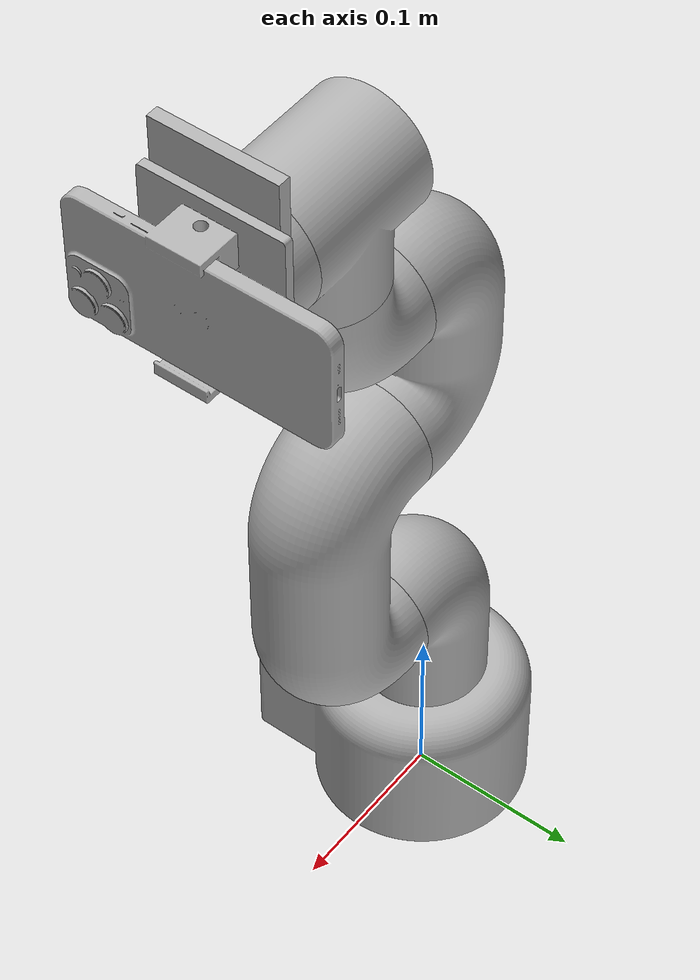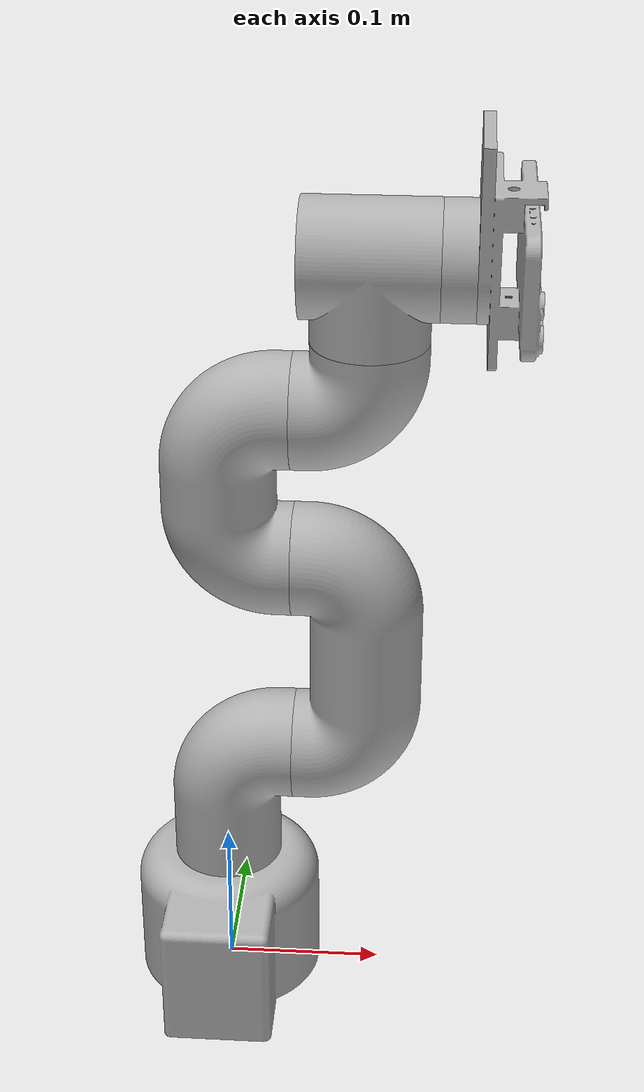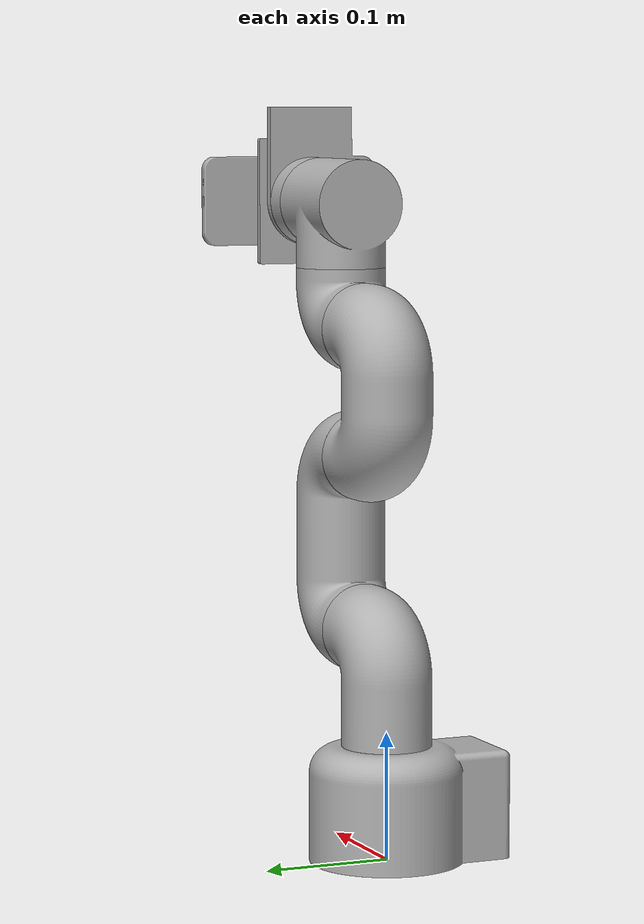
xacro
<?xml version="1.0"?>
<robot xmlns:xacro="http://www.ros.org/wiki/xacro" name="moiro_arm">
    <xacro:arg name="initial_positions_file" default="initial_positions.yaml" />

    <!-- Import moiro_arm urdf file -->
    <xacro:include filename="$(find moiro_arm_description)/urdf/moiro_arm.xacro" />

    <!-- Import control_xacro -->
    <xacro:include filename="moiro_arm.ros2_control.xacro" />

    <xacro:moiro_arm_ros2_control name="FakeSystem" initial_positions_file="$(arg initial_positions_file)"/>

</robot>

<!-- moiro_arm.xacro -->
<robot name="moiro_arm" xmlns:xacro="http://www.ros.org/wiki/xacro">

<xacro:include filename="$(find moiro_arm_description)/urdf/materials.xacro" />
<link name="link0">
  <inertial>
    <origin xyz="-2.1294138884612695e-08 -0.012465741614897647 0.043604773377263574" rpy="0 0 0"/>
    <mass value="9.352590646947165"/>
    <inertia ixx="0.020014" iyy="0.013492" izz="0.021572" ixy="-0.0" iyz="-0.000111" ixz="-0.0"/>
  </inertial>
  <visual>
    <origin xyz="0 0 0" rpy="0 0 0"/>
    <geometry>
      <mesh filename="file://$(find moiro_arm_description)/meshes/link0.stl" scale="0.001 0.001 0.001"/>
    </geometry>
    <material name="silver"/>
  </visual>
  <collision>
    <origin xyz="0 0 0" rpy="0 0 0"/>
    <geometry>
      <mesh filename="file://$(find moiro_arm_description)/meshes/link0.stl" scale="0.001 0.001 0.001"/>
    </geometry>
  </collision>
</link>

<link name="link1">
  <inertial>
    <origin xyz="0.006896766224728663 1.0277085082508868e-17 0.055490186869056435" rpy="0 0 0"/>
    <mass value="3.4735206294395446"/>
    <inertia ixx="0.004461" iyy="0.004757" izz="0.002424" ixy="0.0" iyz="0.0" ixz="-0.000777"/>
  </inertial>
  <visual>
    <origin xyz="0.0 -0.0 -0.09" rpy="0 0 0"/>
    <geometry>
      <mesh filename="file://$(find moiro_arm_description)/meshes/link1.stl" scale="0.001 0.001 0.001"/>
    </geometry>
    <material name="silver"/>
  </visual>
  <collision>
    <origin xyz="0.0 -0.0 -0.09" rpy="0 0 0"/>
    <geometry>
      <mesh filename="file://$(find moiro_arm_description)/meshes/link1.stl" scale="0.001 0.001 0.001"/>
    </geometry>
  </collision>
</link>

<link name="link2">
  <inertial>
    <origin xyz="0.036906585755669324 -5.127617707147077e-18 0.06800000000000106" rpy="0 0 0"/>
    <mass value="5.91988968680626"/>
    <inertia ixx="0.0188" iyy="0.019335" izz="0.004161" ixy="-0.0" iyz="0.0" ixz="0.0"/>
  </inertial>
  <visual>
    <origin xyz="-0.045 -0.0 -0.175" rpy="0 0 0"/>
    <geometry>
      <mesh filename="file://$(find moiro_arm_description)/meshes/link2.stl" scale="0.001 0.001 0.001"/>
    </geometry>
    <material name="silver"/>
  </visual>
  <collision>
    <origin xyz="-0.045 -0.0 -0.175" rpy="0 0 0"/>
    <geometry>
      <mesh filename="file://$(find moiro_arm_description)/meshes/link2.stl" scale="0.001 0.001 0.001"/>
    </geometry>
  </collision>
</link>

<link name="link3">
  <inertial>
    <origin xyz="-0.03502268825299596 3.6027099078187094e-15 0.04950000000000104" rpy="0 0 0"/>
    <mass value="4.802107093668197"/>
    <inertia ixx="0.01014" iyy="0.010584" izz="0.003386" ixy="-0.0" iyz="-0.0" ixz="0.0"/>
  </inertial>
  <visual>
    <origin xyz="-0.045 0.0 -0.311" rpy="0 0 0"/>
    <geometry>
      <mesh filename="file://$(find moiro_arm_description)/meshes/link3.stl" scale="0.001 0.001 0.001"/>
    </geometry>
    <material name="silver"/>
  </visual>
  <collision>
    <origin xyz="-0.045 0.0 -0.311" rpy="0 0 0"/>
    <geometry>
      <mesh filename="file://$(find moiro_arm_description)/meshes/link3.stl" scale="0.001 0.001 0.001"/>
    </geometry>
  </collision>
</link>

<link name="link4">
  <inertial>
    <origin xyz="0.034423872869188424 7.388104622801813e-15 0.010576127130808965" rpy="0 0 0"/>
    <mass value="2.265107015236222"/>
    <inertia ixx="0.001595" iyy="0.001803" izz="0.001595" ixy="-0.0" iyz="-0.0" ixz="-0.000324"/>
  </inertial>
  <visual>
    <origin xyz="-0.045 -0.0 -0.41" rpy="0 0 0"/>
    <geometry>
      <mesh filename="file://$(find moiro_arm_description)/meshes/link4.stl" scale="0.001 0.001 0.001"/>
    </geometry>
    <material name="silver"/>
  </visual>
  <collision>
    <origin xyz="-0.045 -0.0 -0.41" rpy="0 0 0"/>
    <geometry>
      <mesh filename="file://$(find moiro_arm_description)/meshes/link4.stl" scale="0.001 0.001 0.001"/>
    </geometry>
  </collision>
</link>

<link name="link5">
  <inertial>
    <origin xyz="-3.816391647148976e-15 8.447372615657932e-15 0.04211669650613492" rpy="0 0 0"/>
    <mass value="3.029827579494103"/>
    <inertia ixx="0.0025" iyy="0.002976" izz="0.002441" ixy="-0.0" iyz="-0.0" ixz="-0.0"/>
  </inertial>
  <visual>
    <origin xyz="-0.09 -0.0 -0.455" rpy="0 0 0"/>
    <geometry>
      <mesh filename="file://$(find moiro_arm_description)/meshes/link5.stl" scale="0.001 0.001 0.001"/>
    </geometry>
    <material name="silver"/>
  </visual>
  <collision>
    <origin xyz="-0.09 -0.0 -0.455" rpy="0 0 0"/>
    <geometry>
      <mesh filename="file://$(find moiro_arm_description)/meshes/link5.stl" scale="0.001 0.001 0.001"/>
    </geometry>
  </collision>
</link>

<link name="link6">
  <inertial>
    <origin xyz="0.00999999999999615 8.43769498715119e-15 3.3306690738754696e-16" rpy="0 0 0"/>
    <mass value="0.6042068071016569"/>
    <inertia ixx="0.00037" iyy="0.000205" izz="0.000205" ixy="-0.0" iyz="0.0" ixz="0.0"/>
  </inertial>
  <visual>
    <origin xyz="-0.13 -0.0 -0.505" rpy="0 0 0"/>
    <geometry>
      <mesh filename="file://$(find moiro_arm_description)/meshes/link6.stl" scale="0.001 0.001 0.001"/>
    </geometry>
    <material name="silver"/>
  </visual>
  <collision>
    <origin xyz="-0.13 -0.0 -0.505" rpy="0 0 0"/>
    <geometry>
      <mesh filename="file://$(find moiro_arm_description)/meshes/link6.stl" scale="0.001 0.001 0.001"/>
    </geometry>
  </collision>
</link>

<link name="cobot_camera">
  <inertial>
    <origin xyz="0.017423960091247193 0.0032534266311959052 0.0058193857187291975" rpy="0 0 0"/>
    <mass value="0.21027144182469326"/>
    <inertia ixx="0.000387" iyy="0.000194" izz="0.000246" ixy="-5e-06" iyz="2e-06" ixz="1.9e-05"/>
  </inertial>
  <visual>
    <origin xyz="-0.15 -0.0 -0.505" rpy="0 0 0"/>
    <geometry>
      <mesh filename="file://$(find moiro_arm_description)/meshes/cobot_camera.stl" scale="0.001 0.001 0.001"/>
    </geometry>
    <material name="silver"/>
  </visual>
  <collision>
    <origin xyz="-0.15 -0.0 -0.505" rpy="0 0 0"/>
    <geometry>
      <mesh filename="file://$(find moiro_arm_description)/meshes/cobot_camera.stl" scale="0.001 0.001 0.001"/>
    </geometry>
  </collision>
</link>

<joint name="mycobot_joint_1" type="revolute">
  <origin xyz="0.0 0.0 0.09" rpy="0 0 0"/>
  <parent link="link0"/>
  <child link="link1"/>
  <axis xyz="-0.0 -0.0 1.0"/>
  <limit upper="2.792527" lower="-2.792527" effort="100" velocity="100"/>
</joint>

<joint name="mycobot_joint_2" type="revolute">
  <origin xyz="0.045 0.0 0.085" rpy="0 0 0"/>
  <parent link="link1"/>
  <child link="link2"/>
  <axis xyz="1.0 0.0 0.0"/>
  <limit upper="2.792527" lower="-2.792527" effort="100" velocity="100"/>
</joint>

<joint name="mycobot_joint_3" type="revolute">
  <origin xyz="0.0 -0.0 0.136" rpy="0 0 0"/>
  <parent link="link2"/>
  <child link="link3"/>
  <axis xyz="-1.0 -0.0 -0.0"/>
  <limit upper="2.792527" lower="-2.792527" effort="100" velocity="100"/>
</joint>

<joint name="mycobot_joint_4" type="revolute">
  <origin xyz="0.0 0.0 0.099" rpy="0 0 0"/>
  <parent link="link3"/>
  <child link="link4"/>
  <axis xyz="1.0 -0.0 0.0"/>
  <limit upper="2.792527" lower="-2.792527" effort="100" velocity="100"/>
</joint>

<joint name="mycobot_joint_5" type="revolute">
  <origin xyz="0.045 0.0 0.045" rpy="0 0 0"/>
  <parent link="link4"/>
  <child link="link5"/>
  <axis xyz="0.0 0.0 1.0"/>
  <limit upper="2.792527" lower="-2.792527" effort="100" velocity="100"/>
</joint>

<joint name="mycobot_joint_6" type="revolute">
  <origin xyz="0.04 0.0 0.05" rpy="0 0 0"/>
  <parent link="link5"/>
  <child link="link6"/>
  <axis xyz="1.0 -0.0 0.0"/>
  <limit upper="2.792527" lower="-2.792527" effort="100" velocity="100"/>
</joint>

<joint name="cobot_camera_joint" type="fixed">
  <origin xyz="0.02 0.0 0.0" rpy="0 0 0"/>
  <parent link="link6"/>
  <child link="cobot_camera"/>
</joint>

</robot>

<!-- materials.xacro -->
<robot name="moiro_arm" xmlns:xacro="http://www.ros.org/wiki/xacro" >

<material name="silver">
  <color rgba="0.700 0.700 0.700 1.000"/>
</material>

</robot>
